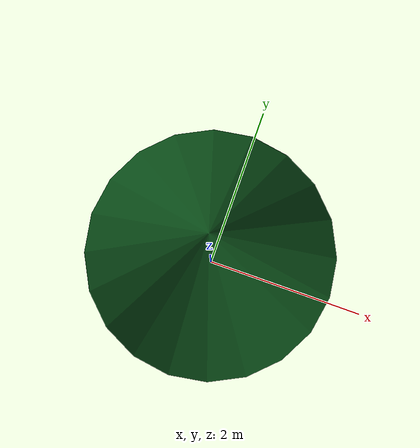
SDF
<?xml version="1.0"?>
<sdf version="1.9">
  <model name="astra_pine_tree">
    <static>true</static>
    <link name="tree">
      <collision name="trunk_collision">
        <pose>0 0 2.5 0 0 0</pose>
        <geometry><cylinder><radius>0.24</radius><length>5</length></cylinder></geometry>
      </collision>
      <visual name="trunk_visual">
        <pose>0 0 2.5 0 0 0</pose>
        <geometry><cylinder><radius>0.24</radius><length>5</length></cylinder></geometry>
        <material><ambient>0.26 0.13 0.05 1</ambient><diffuse>0.35 0.18 0.07 1</diffuse></material>
      </visual>
      <collision name="crown_collision">
        <pose>0 0 4.5 0 0 0</pose>
        <geometry><cone><radius>1.55</radius><length>5.5</length></cone></geometry>
      </collision>
      <visual name="crown_visual">
        <pose>0 0 4.5 0 0 0</pose>
        <geometry><cone><radius>1.55</radius><length>5.5</length></cone></geometry>
        <material><ambient>0.04 0.20 0.08 1</ambient><diffuse>0.05 0.34 0.11 1</diffuse></material>
      </visual>
    </link>
  </model>
</sdf>
